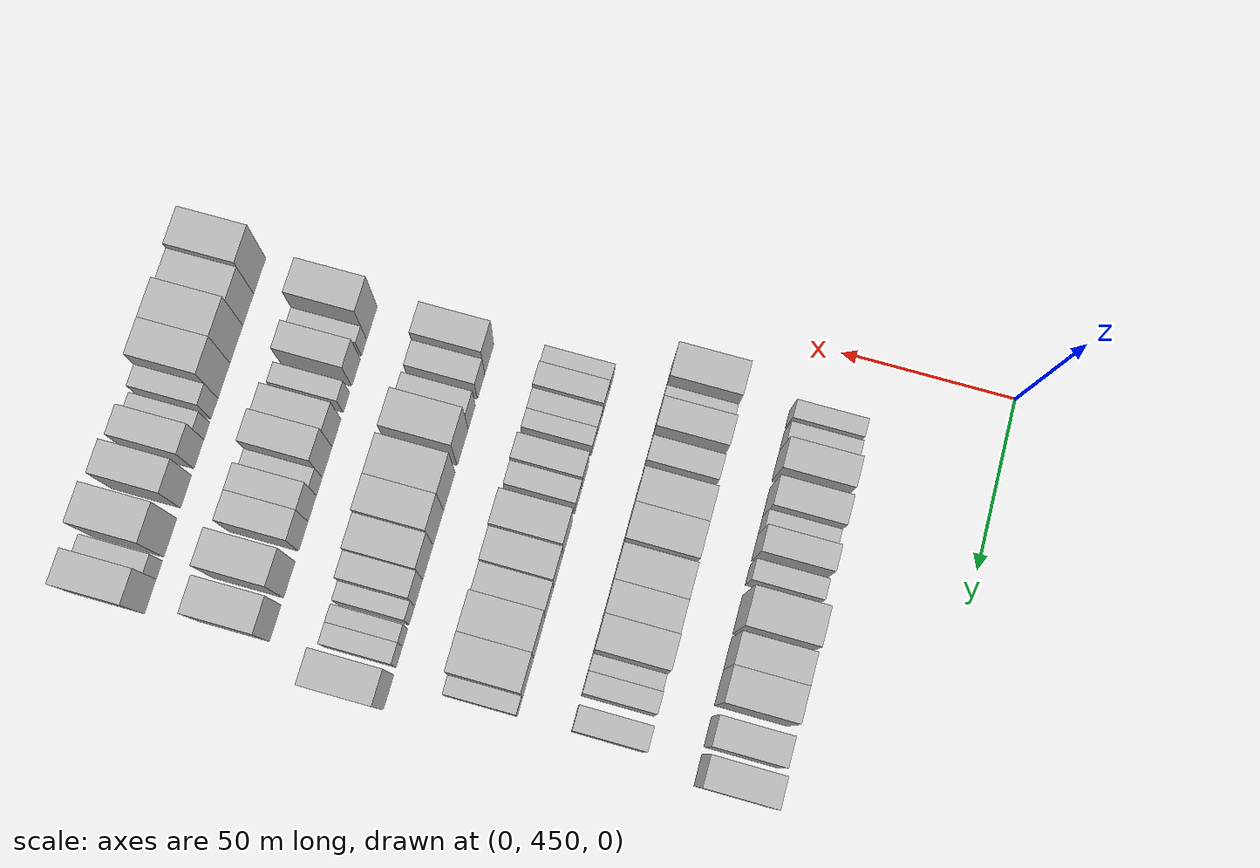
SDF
<sdf version="1.6">
 <world name="default">
  <model name="building_107">
   <static>1</static>
   <pose>50.0000 472.8811 0 0.000000 0.000000 0.000000</pose>
   <link name="link">
    <pose>0 0 6.00 0 0 0</pose>
    <collision name="collision"><geometry><box><size>20.0000 5.3072 12.0000</size></box></geometry></collision>
    <visual name="visual">
     <cast_shadows>0</cast_shadows>
     <geometry><box><size>20.0000 5.3072 12.0000</size></box></geometry>
     <material>
      <script>
       <uri>model://HANNAS_wall/materials/scripts</uri>
       <uri>model://HANNAS_wall/materials/textures</uri>
       <name>vrc/HANNAS_wall</name>
      </script>
     </material>
    </visual>
   </link>
  </model>
  <model name="building_108">
   <static>1</static>
   <pose>50.0000 479.5080 0 0.000000 0.000000 0.000000</pose>
   <link name="link">
    <pose>0 0 6.00 0 0 0</pose>
    <collision name="collision"><geometry><box><size>20.0000 5.9467 12.0000</size></box></geometry></collision>
    <visual name="visual">
     <cast_shadows>0</cast_shadows>
     <geometry><box><size>20.0000 5.9467 12.0000</size></box></geometry>
     <material>
      <script>
       <uri>model://HANNAS_wall/materials/scripts</uri>
       <uri>model://HANNAS_wall/materials/textures</uri>
       <name>vrc/HANNAS_wall</name>
      </script>
     </material>
    </visual>
   </link>
  </model>
  <model name="building_109">
   <static>1</static>
   <pose>50.0000 486.8493 0 0.000000 0.000000 0.000000</pose>
   <link name="link">
    <pose>0 0 9.00 0 0 0</pose>
    <collision name="collision"><geometry><box><size>20.0000 8.7358 18.0000</size></box></geometry></collision>
    <visual name="visual">
     <cast_shadows>0</cast_shadows>
     <geometry><box><size>20.0000 8.7358 18.0000</size></box></geometry>
     <material>
      <script>
       <uri>model://HANNAS_wall/materials/scripts</uri>
       <uri>model://HANNAS_wall/materials/textures</uri>
       <name>vrc/HANNAS_wall</name>
      </script>
     </material>
    </visual>
   </link>
  </model>
  <model name="building_110">
   <static>1</static>
   <pose>50.0000 497.4226 0 0.000000 0.000000 0.000000</pose>
   <link name="link">
    <pose>0 0 9.00 0 0 0</pose>
    <collision name="collision"><geometry><box><size>20.0000 8.4109 18.0000</size></box></geometry></collision>
    <visual name="visual">
     <cast_shadows>0</cast_shadows>
     <geometry><box><size>20.0000 8.4109 18.0000</size></box></geometry>
     <material>
      <script>
       <uri>model://HANNAS_wall/materials/scripts</uri>
       <uri>model://HANNAS_wall/materials/textures</uri>
       <name>vrc/HANNAS_wall</name>
      </script>
     </material>
    </visual>
   </link>
  </model>
  <model name="building_111">
   <static>1</static>
   <pose>50.0000 504.2874 0 0.000000 0.000000 0.000000</pose>
   <link name="link">
    <pose>0 0 6.00 0 0 0</pose>
    <collision name="collision"><geometry><box><size>20.0000 5.3186 12.0000</size></box></geometry></collision>
    <visual name="visual">
     <cast_shadows>0</cast_shadows>
     <geometry><box><size>20.0000 5.3186 12.0000</size></box></geometry>
     <material>
      <script>
       <uri>model://HANNAS_wall/materials/scripts</uri>
       <uri>model://HANNAS_wall/materials/textures</uri>
       <name>vrc/HANNAS_wall</name>
      </script>
     </material>
    </visual>
   </link>
  </model>
  <model name="building_112">
   <static>1</static>
   <pose>50.0000 510.6583 0 0.000000 0.000000 0.000000</pose>
   <link name="link">
    <pose>0 0 9.00 0 0 0</pose>
    <collision name="collision"><geometry><box><size>20.0000 7.4232 18.0000</size></box></geometry></collision>
    <visual name="visual">
     <cast_shadows>0</cast_shadows>
     <geometry><box><size>20.0000 7.4232 18.0000</size></box></geometry>
     <material>
      <script>
       <uri>model://HANNAS_wall/materials/scripts</uri>
       <uri>model://HANNAS_wall/materials/textures</uri>
       <name>vrc/HANNAS_wall</name>
      </script>
     </material>
    </visual>
   </link>
  </model>
  <model name="building_113">
   <static>1</static>
   <pose>50.0000 518.3257 0 0.000000 0.000000 0.000000</pose>
   <link name="link">
    <pose>0 0 6.00 0 0 0</pose>
    <collision name="collision"><geometry><box><size>20.0000 5.9116 12.0000</size></box></geometry></collision>
    <visual name="visual">
     <cast_shadows>0</cast_shadows>
     <geometry><box><size>20.0000 5.9116 12.0000</size></box></geometry>
     <material>
      <script>
       <uri>model://HANNAS_wall/materials/scripts</uri>
       <uri>model://HANNAS_wall/materials/textures</uri>
       <name>vrc/HANNAS_wall</name>
      </script>
     </material>
    </visual>
   </link>
  </model>
  <model name="building_114">
   <static>1</static>
   <pose>50.0000 529.6898 0 0.000000 0.000000 0.000000</pose>
   <link name="link">
    <pose>0 0 12.00 0 0 0</pose>
    <collision name="collision"><geometry><box><size>20.0000 10.8165 24.0000</size></box></geometry></collision>
    <visual name="visual">
     <cast_shadows>0</cast_shadows>
     <geometry><box><size>20.0000 10.8165 24.0000</size></box></geometry>
     <material>
      <script>
       <uri>model://HANNAS_wall/materials/scripts</uri>
       <uri>model://HANNAS_wall/materials/textures</uri>
       <name>vrc/HANNAS_wall</name>
      </script>
     </material>
    </visual>
   </link>
  </model>
  <model name="building_115">
   <static>1</static>
   <pose>50.0000 540.5441 0 0.000000 0.000000 0.000000</pose>
   <link name="link">
    <pose>0 0 10.50 0 0 0</pose>
    <collision name="collision"><geometry><box><size>20.0000 8.8921 21.0000</size></box></geometry></collision>
    <visual name="visual">
     <cast_shadows>0</cast_shadows>
     <geometry><box><size>20.0000 8.8921 21.0000</size></box></geometry>
     <material>
      <script>
       <uri>model://HANNAS_wall/materials/scripts</uri>
       <uri>model://HANNAS_wall/materials/textures</uri>
       <name>vrc/HANNAS_wall</name>
      </script>
     </material>
    </visual>
   </link>
  </model>
  <model name="building_116">
   <static>1</static>
   <pose>50.0000 549.9887 0 0.000000 0.000000 0.000000</pose>
   <link name="link">
    <pose>0 0 10.50 0 0 0</pose>
    <collision name="collision"><geometry><box><size>20.0000 9.9971 21.0000</size></box></geometry></collision>
    <visual name="visual">
     <cast_shadows>0</cast_shadows>
     <geometry><box><size>20.0000 9.9971 21.0000</size></box></geometry>
     <material>
      <script>
       <uri>model://HANNAS_wall/materials/scripts</uri>
       <uri>model://HANNAS_wall/materials/textures</uri>
       <name>vrc/HANNAS_wall</name>
      </script>
     </material>
    </visual>
   </link>
  </model>
  <model name="building_117">
   <static>1</static>
   <pose>50.0000 562.1342 0 0.000000 0.000000 0.000000</pose>
   <link name="link">
    <pose>0 0 9.00 0 0 0</pose>
    <collision name="collision"><geometry><box><size>20.0000 8.2938 18.0000</size></box></geometry></collision>
    <visual name="visual">
     <cast_shadows>0</cast_shadows>
     <geometry><box><size>20.0000 8.2938 18.0000</size></box></geometry>
     <material>
      <script>
       <uri>model://HANNAS_wall/materials/scripts</uri>
       <uri>model://HANNAS_wall/materials/textures</uri>
       <name>vrc/HANNAS_wall</name>
      </script>
     </material>
    </visual>
   </link>
  </model>
  <model name="building_118">
   <static>1</static>
   <pose>50.0000 572.5674 0 0.000000 0.000000 0.000000</pose>
   <link name="link">
    <pose>0 0 10.50 0 0 0</pose>
    <collision name="collision"><geometry><box><size>20.0000 8.5726 21.0000</size></box></geometry></collision>
    <visual name="visual">
     <cast_shadows>0</cast_shadows>
     <geometry><box><size>20.0000 8.5726 21.0000</size></box></geometry>
     <material>
      <script>
       <uri>model://HANNAS_wall/materials/scripts</uri>
       <uri>model://HANNAS_wall/materials/textures</uri>
       <name>vrc/HANNAS_wall</name>
      </script>
     </material>
    </visual>
   </link>
  </model>
  <model name="building_236">
   <static>1</static>
   <pose>85.0000 471.0602 0 0.000000 0.000000 0.000000</pose>
   <link name="link">
    <pose>0 0 10.50 0 0 0</pose>
    <collision name="collision"><geometry><box><size>20.0000 9.7270 21.0000</size></box></geometry></collision>
    <visual name="visual">
     <cast_shadows>0</cast_shadows>
     <geometry><box><size>20.0000 9.7270 21.0000</size></box></geometry>
     <material>
      <script>
       <uri>model://HANNAS_wall/materials/scripts</uri>
       <uri>model://HANNAS_wall/materials/textures</uri>
       <name>vrc/HANNAS_wall</name>
      </script>
     </material>
    </visual>
   </link>
  </model>
  <model name="building_237">
   <static>1</static>
   <pose>85.0000 478.7575 0 0.000000 0.000000 0.000000</pose>
   <link name="link">
    <pose>0 0 6.00 0 0 0</pose>
    <collision name="collision"><geometry><box><size>20.0000 5.6675 12.0000</size></box></geometry></collision>
    <visual name="visual">
     <cast_shadows>0</cast_shadows>
     <geometry><box><size>20.0000 5.6675 12.0000</size></box></geometry>
     <material>
      <script>
       <uri>model://HANNAS_wall/materials/scripts</uri>
       <uri>model://HANNAS_wall/materials/textures</uri>
       <name>vrc/HANNAS_wall</name>
      </script>
     </material>
    </visual>
   </link>
  </model>
  <model name="building_238">
   <static>1</static>
   <pose>85.0000 485.8335 0 0.000000 0.000000 0.000000</pose>
   <link name="link">
    <pose>0 0 10.50 0 0 0</pose>
    <collision name="collision"><geometry><box><size>20.0000 8.4846 21.0000</size></box></geometry></collision>
    <visual name="visual">
     <cast_shadows>0</cast_shadows>
     <geometry><box><size>20.0000 8.4846 21.0000</size></box></geometry>
     <material>
      <script>
       <uri>model://HANNAS_wall/materials/scripts</uri>
       <uri>model://HANNAS_wall/materials/textures</uri>
       <name>vrc/HANNAS_wall</name>
      </script>
     </material>
    </visual>
   </link>
  </model>
  <model name="building_239">
   <static>1</static>
   <pose>85.0000 494.6760 0 0.000000 0.000000 0.000000</pose>
   <link name="link">
    <pose>0 0 7.50 0 0 0</pose>
    <collision name="collision"><geometry><box><size>20.0000 7.2004 15.0000</size></box></geometry></collision>
    <visual name="visual">
     <cast_shadows>0</cast_shadows>
     <geometry><box><size>20.0000 7.2004 15.0000</size></box></geometry>
     <material>
      <script>
       <uri>model://HANNAS_wall/materials/scripts</uri>
       <uri>model://HANNAS_wall/materials/textures</uri>
       <name>vrc/HANNAS_wall</name>
      </script>
     </material>
    </visual>
   </link>
  </model>
  <model name="building_240">
   <static>1</static>
   <pose>85.0000 506.1284 0 0.000000 0.000000 0.000000</pose>
   <link name="link">
    <pose>0 0 10.50 0 0 0</pose>
    <collision name="collision"><geometry><box><size>20.0000 9.7045 21.0000</size></box></geometry></collision>
    <visual name="visual">
     <cast_shadows>0</cast_shadows>
     <geometry><box><size>20.0000 9.7045 21.0000</size></box></geometry>
     <material>
      <script>
       <uri>model://HANNAS_wall/materials/scripts</uri>
       <uri>model://HANNAS_wall/materials/textures</uri>
       <name>vrc/HANNAS_wall</name>
      </script>
     </material>
    </visual>
   </link>
  </model>
  <model name="building_241">
   <static>1</static>
   <pose>85.0000 516.0493 0 0.000000 0.000000 0.000000</pose>
   <link name="link">
    <pose>0 0 10.50 0 0 0</pose>
    <collision name="collision"><geometry><box><size>20.0000 10.1372 21.0000</size></box></geometry></collision>
    <visual name="visual">
     <cast_shadows>0</cast_shadows>
     <geometry><box><size>20.0000 10.1372 21.0000</size></box></geometry>
     <material>
      <script>
       <uri>model://HANNAS_wall/materials/scripts</uri>
       <uri>model://HANNAS_wall/materials/textures</uri>
       <name>vrc/HANNAS_wall</name>
      </script>
     </material>
    </visual>
   </link>
  </model>
  <model name="building_242">
   <static>1</static>
   <pose>85.0000 527.1131 0 0.000000 0.000000 0.000000</pose>
   <link name="link">
    <pose>0 0 10.50 0 0 0</pose>
    <collision name="collision"><geometry><box><size>20.0000 9.9904 21.0000</size></box></geometry></collision>
    <visual name="visual">
     <cast_shadows>0</cast_shadows>
     <geometry><box><size>20.0000 9.9904 21.0000</size></box></geometry>
     <material>
      <script>
       <uri>model://HANNAS_wall/materials/scripts</uri>
       <uri>model://HANNAS_wall/materials/textures</uri>
       <name>vrc/HANNAS_wall</name>
      </script>
     </material>
    </visual>
   </link>
  </model>
  <model name="building_243">
   <static>1</static>
   <pose>85.0000 536.8431 0 0.000000 0.000000 0.000000</pose>
   <link name="link">
    <pose>0 0 10.50 0 0 0</pose>
    <collision name="collision"><geometry><box><size>20.0000 9.4696 21.0000</size></box></geometry></collision>
    <visual name="visual">
     <cast_shadows>0</cast_shadows>
     <geometry><box><size>20.0000 9.4696 21.0000</size></box></geometry>
     <material>
      <script>
       <uri>model://HANNAS_wall/materials/scripts</uri>
       <uri>model://HANNAS_wall/materials/textures</uri>
       <name>vrc/HANNAS_wall</name>
      </script>
     </material>
    </visual>
   </link>
  </model>
  <model name="building_244">
   <static>1</static>
   <pose>85.0000 546.4128 0 0.000000 0.000000 0.000000</pose>
   <link name="link">
    <pose>0 0 12.00 0 0 0</pose>
    <collision name="collision"><geometry><box><size>20.0000 9.6696 24.0000</size></box></geometry></collision>
    <visual name="visual">
     <cast_shadows>0</cast_shadows>
     <geometry><box><size>20.0000 9.6696 24.0000</size></box></geometry>
     <material>
      <script>
       <uri>model://HANNAS_wall/materials/scripts</uri>
       <uri>model://HANNAS_wall/materials/textures</uri>
       <name>vrc/HANNAS_wall</name>
      </script>
     </material>
    </visual>
   </link>
  </model>
  <model name="building_245">
   <static>1</static>
   <pose>85.0000 553.6696 0 0.000000 0.000000 0.000000</pose>
   <link name="link">
    <pose>0 0 6.00 0 0 0</pose>
    <collision name="collision"><geometry><box><size>20.0000 4.8441 12.0000</size></box></geometry></collision>
    <visual name="visual">
     <cast_shadows>0</cast_shadows>
     <geometry><box><size>20.0000 4.8441 12.0000</size></box></geometry>
     <material>
      <script>
       <uri>model://HANNAS_wall/materials/scripts</uri>
       <uri>model://HANNAS_wall/materials/textures</uri>
       <name>vrc/HANNAS_wall</name>
      </script>
     </material>
    </visual>
   </link>
  </model>
  <model name="building_246">
   <static>1</static>
   <pose>85.0000 559.1233 0 0.000000 0.000000 0.000000</pose>
   <link name="link">
    <pose>0 0 7.50 0 0 0</pose>
    <collision name="collision"><geometry><box><size>20.0000 6.0632 15.0000</size></box></geometry></collision>
    <visual name="visual">
     <cast_shadows>0</cast_shadows>
     <geometry><box><size>20.0000 6.0632 15.0000</size></box></geometry>
     <material>
      <script>
       <uri>model://HANNAS_wall/materials/scripts</uri>
       <uri>model://HANNAS_wall/materials/textures</uri>
       <name>vrc/HANNAS_wall</name>
      </script>
     </material>
    </visual>
   </link>
  </model>
  <model name="building_247">
   <static>1</static>
   <pose>85.0000 568.5957 0 0.000000 0.000000 0.000000</pose>
   <link name="link">
    <pose>0 0 7.50 0 0 0</pose>
    <collision name="collision"><geometry><box><size>20.0000 6.8816 15.0000</size></box></geometry></collision>
    <visual name="visual">
     <cast_shadows>0</cast_shadows>
     <geometry><box><size>20.0000 6.8816 15.0000</size></box></geometry>
     <material>
      <script>
       <uri>model://HANNAS_wall/materials/scripts</uri>
       <uri>model://HANNAS_wall/materials/textures</uri>
       <name>vrc/HANNAS_wall</name>
      </script>
     </material>
    </visual>
   </link>
  </model>
  <model name="building_367">
   <static>1</static>
   <pose>120.0000 476.9288 0 0.000000 0.000000 0.000000</pose>
   <link name="link">
    <pose>0 0 6.00 0 0 0</pose>
    <collision name="collision"><geometry><box><size>20.0000 5.6209 12.0000</size></box></geometry></collision>
    <visual name="visual">
     <cast_shadows>0</cast_shadows>
     <geometry><box><size>20.0000 5.6209 12.0000</size></box></geometry>
     <material>
      <script>
       <uri>model://HANNAS_wall/materials/scripts</uri>
       <uri>model://HANNAS_wall/materials/textures</uri>
       <name>vrc/HANNAS_wall</name>
      </script>
     </material>
    </visual>
   </link>
  </model>
  <model name="building_368">
   <static>1</static>
   <pose>120.0000 483.1126 0 0.000000 0.000000 0.000000</pose>
   <link name="link">
    <pose>0 0 7.50 0 0 0</pose>
    <collision name="collision"><geometry><box><size>20.0000 6.7466 15.0000</size></box></geometry></collision>
    <visual name="visual">
     <cast_shadows>0</cast_shadows>
     <geometry><box><size>20.0000 6.7466 15.0000</size></box></geometry>
     <material>
      <script>
       <uri>model://HANNAS_wall/materials/scripts</uri>
       <uri>model://HANNAS_wall/materials/textures</uri>
       <name>vrc/HANNAS_wall</name>
      </script>
     </material>
    </visual>
   </link>
  </model>
  <model name="building_369">
   <static>1</static>
   <pose>120.0000 489.4857 0 0.000000 0.000000 0.000000</pose>
   <link name="link">
    <pose>0 0 6.00 0 0 0</pose>
    <collision name="collision"><geometry><box><size>20.0000 5.9996 12.0000</size></box></geometry></collision>
    <visual name="visual">
     <cast_shadows>0</cast_shadows>
     <geometry><box><size>20.0000 5.9996 12.0000</size></box></geometry>
     <material>
      <script>
       <uri>model://HANNAS_wall/materials/scripts</uri>
       <uri>model://HANNAS_wall/materials/textures</uri>
       <name>vrc/HANNAS_wall</name>
      </script>
     </material>
    </visual>
   </link>
  </model>
  <model name="building_370">
   <static>1</static>
   <pose>120.0000 495.2252 0 0.000000 0.000000 0.000000</pose>
   <link name="link">
    <pose>0 0 6.00 0 0 0</pose>
    <collision name="collision"><geometry><box><size>20.0000 5.4795 12.0000</size></box></geometry></collision>
    <visual name="visual">
     <cast_shadows>0</cast_shadows>
     <geometry><box><size>20.0000 5.4795 12.0000</size></box></geometry>
     <material>
      <script>
       <uri>model://HANNAS_wall/materials/scripts</uri>
       <uri>model://HANNAS_wall/materials/textures</uri>
       <name>vrc/HANNAS_wall</name>
      </script>
     </material>
    </visual>
   </link>
  </model>
  <model name="building_371">
   <static>1</static>
   <pose>120.0000 504.5869 0 0.000000 0.000000 0.000000</pose>
   <link name="link">
    <pose>0 0 9.00 0 0 0</pose>
    <collision name="collision"><geometry><box><size>20.0000 7.2438 18.0000</size></box></geometry></collision>
    <visual name="visual">
     <cast_shadows>0</cast_shadows>
     <geometry><box><size>20.0000 7.2438 18.0000</size></box></geometry>
     <material>
      <script>
       <uri>model://HANNAS_wall/materials/scripts</uri>
       <uri>model://HANNAS_wall/materials/textures</uri>
       <name>vrc/HANNAS_wall</name>
      </script>
     </material>
    </visual>
   </link>
  </model>
  <model name="building_372">
   <static>1</static>
   <pose>120.0000 511.5255 0 0.000000 0.000000 0.000000</pose>
   <link name="link">
    <pose>0 0 7.50 0 0 0</pose>
    <collision name="collision"><geometry><box><size>20.0000 6.6334 15.0000</size></box></geometry></collision>
    <visual name="visual">
     <cast_shadows>0</cast_shadows>
     <geometry><box><size>20.0000 6.6334 15.0000</size></box></geometry>
     <material>
      <script>
       <uri>model://HANNAS_wall/materials/scripts</uri>
       <uri>model://HANNAS_wall/materials/textures</uri>
       <name>vrc/HANNAS_wall</name>
      </script>
     </material>
    </visual>
   </link>
  </model>
  <model name="building_373">
   <static>1</static>
   <pose>120.0000 522.7236 0 0.000000 0.000000 0.000000</pose>
   <link name="link">
    <pose>0 0 12.00 0 0 0</pose>
    <collision name="collision"><geometry><box><size>20.0000 9.7628 24.0000</size></box></geometry></collision>
    <visual name="visual">
     <cast_shadows>0</cast_shadows>
     <geometry><box><size>20.0000 9.7628 24.0000</size></box></geometry>
     <material>
      <script>
       <uri>model://HANNAS_wall/materials/scripts</uri>
       <uri>model://HANNAS_wall/materials/textures</uri>
       <name>vrc/HANNAS_wall</name>
      </script>
     </material>
    </visual>
   </link>
  </model>
  <model name="building_374">
   <static>1</static>
   <pose>120.0000 532.1885 0 0.000000 0.000000 0.000000</pose>
   <link name="link">
    <pose>0 0 10.50 0 0 0</pose>
    <collision name="collision"><geometry><box><size>20.0000 9.1669 21.0000</size></box></geometry></collision>
    <visual name="visual">
     <cast_shadows>0</cast_shadows>
     <geometry><box><size>20.0000 9.1669 21.0000</size></box></geometry>
     <material>
      <script>
       <uri>model://HANNAS_wall/materials/scripts</uri>
       <uri>model://HANNAS_wall/materials/textures</uri>
       <name>vrc/HANNAS_wall</name>
      </script>
     </material>
    </visual>
   </link>
  </model>
  <model name="building_375">
   <static>1</static>
   <pose>120.0000 541.0107 0 0.000000 0.000000 0.000000</pose>
   <link name="link">
    <pose>0 0 9.00 0 0 0</pose>
    <collision name="collision"><geometry><box><size>20.0000 8.4774 18.0000</size></box></geometry></collision>
    <visual name="visual">
     <cast_shadows>0</cast_shadows>
     <geometry><box><size>20.0000 8.4774 18.0000</size></box></geometry>
     <material>
      <script>
       <uri>model://HANNAS_wall/materials/scripts</uri>
       <uri>model://HANNAS_wall/materials/textures</uri>
       <name>vrc/HANNAS_wall</name>
      </script>
     </material>
    </visual>
   </link>
  </model>
  <model name="building_376">
   <static>1</static>
   <pose>120.0000 550.7635 0 0.000000 0.000000 0.000000</pose>
   <link name="link">
    <pose>0 0 12.00 0 0 0</pose>
    <collision name="collision"><geometry><box><size>20.0000 11.0283 24.0000</size></box></geometry></collision>
    <visual name="visual">
     <cast_shadows>0</cast_shadows>
     <geometry><box><size>20.0000 11.0283 24.0000</size></box></geometry>
     <material>
      <script>
       <uri>model://HANNAS_wall/materials/scripts</uri>
       <uri>model://HANNAS_wall/materials/textures</uri>
       <name>vrc/HANNAS_wall</name>
      </script>
     </material>
    </visual>
   </link>
  </model>
  <model name="building_377">
   <static>1</static>
   <pose>120.0000 561.6013 0 0.000000 0.000000 0.000000</pose>
   <link name="link">
    <pose>0 0 12.00 0 0 0</pose>
    <collision name="collision"><geometry><box><size>20.0000 10.6472 24.0000</size></box></geometry></collision>
    <visual name="visual">
     <cast_shadows>0</cast_shadows>
     <geometry><box><size>20.0000 10.6472 24.0000</size></box></geometry>
     <material>
      <script>
       <uri>model://HANNAS_wall/materials/scripts</uri>
       <uri>model://HANNAS_wall/materials/textures</uri>
       <name>vrc/HANNAS_wall</name>
      </script>
     </material>
    </visual>
   </link>
  </model>
  <model name="building_378">
   <static>1</static>
   <pose>120.0000 569.5240 0 0.000000 0.000000 0.000000</pose>
   <link name="link">
    <pose>0 0 6.00 0 0 0</pose>
    <collision name="collision"><geometry><box><size>20.0000 5.1983 12.0000</size></box></geometry></collision>
    <visual name="visual">
     <cast_shadows>0</cast_shadows>
     <geometry><box><size>20.0000 5.1983 12.0000</size></box></geometry>
     <material>
      <script>
       <uri>model://HANNAS_wall/materials/scripts</uri>
       <uri>model://HANNAS_wall/materials/textures</uri>
       <name>vrc/HANNAS_wall</name>
      </script>
     </material>
    </visual>
   </link>
  </model>
  <model name="building_499">
   <static>1</static>
   <pose>155.0000 478.8940 0 0.000000 0.000000 0.000000</pose>
   <link name="link">
    <pose>0 0 10.50 0 0 0</pose>
    <collision name="collision"><geometry><box><size>20.0000 9.0175 21.0000</size></box></geometry></collision>
    <visual name="visual">
     <cast_shadows>0</cast_shadows>
     <geometry><box><size>20.0000 9.0175 21.0000</size></box></geometry>
     <material>
      <script>
       <uri>model://HANNAS_wall/materials/scripts</uri>
       <uri>model://HANNAS_wall/materials/textures</uri>
       <name>vrc/HANNAS_wall</name>
      </script>
     </material>
    </visual>
   </link>
  </model>
  <model name="building_500">
   <static>1</static>
   <pose>155.0000 487.0997 0 0.000000 0.000000 0.000000</pose>
   <link name="link">
    <pose>0 0 7.50 0 0 0</pose>
    <collision name="collision"><geometry><box><size>20.0000 7.3940 15.0000</size></box></geometry></collision>
    <visual name="visual">
     <cast_shadows>0</cast_shadows>
     <geometry><box><size>20.0000 7.3940 15.0000</size></box></geometry>
     <material>
      <script>
       <uri>model://HANNAS_wall/materials/scripts</uri>
       <uri>model://HANNAS_wall/materials/textures</uri>
       <name>vrc/HANNAS_wall</name>
      </script>
     </material>
    </visual>
   </link>
  </model>
  <model name="building_501">
   <static>1</static>
   <pose>155.0000 496.3541 0 0.000000 0.000000 0.000000</pose>
   <link name="link">
    <pose>0 0 7.50 0 0 0</pose>
    <collision name="collision"><geometry><box><size>20.0000 7.1147 15.0000</size></box></geometry></collision>
    <visual name="visual">
     <cast_shadows>0</cast_shadows>
     <geometry><box><size>20.0000 7.1147 15.0000</size></box></geometry>
     <material>
      <script>
       <uri>model://HANNAS_wall/materials/scripts</uri>
       <uri>model://HANNAS_wall/materials/textures</uri>
       <name>vrc/HANNAS_wall</name>
      </script>
     </material>
    </visual>
   </link>
  </model>
  <model name="building_502">
   <static>1</static>
   <pose>155.0000 505.2437 0 0.000000 0.000000 0.000000</pose>
   <link name="link">
    <pose>0 0 12.00 0 0 0</pose>
    <collision name="collision"><geometry><box><size>20.0000 10.6647 24.0000</size></box></geometry></collision>
    <visual name="visual">
     <cast_shadows>0</cast_shadows>
     <geometry><box><size>20.0000 10.6647 24.0000</size></box></geometry>
     <material>
      <script>
       <uri>model://HANNAS_wall/materials/scripts</uri>
       <uri>model://HANNAS_wall/materials/textures</uri>
       <name>vrc/HANNAS_wall</name>
      </script>
     </material>
    </visual>
   </link>
  </model>
  <model name="building_503">
   <static>1</static>
   <pose>155.0000 518.1891 0 0.000000 0.000000 0.000000</pose>
   <link name="link">
    <pose>0 0 12.00 0 0 0</pose>
    <collision name="collision"><geometry><box><size>20.0000 11.2261 24.0000</size></box></geometry></collision>
    <visual name="visual">
     <cast_shadows>0</cast_shadows>
     <geometry><box><size>20.0000 11.2261 24.0000</size></box></geometry>
     <material>
      <script>
       <uri>model://HANNAS_wall/materials/scripts</uri>
       <uri>model://HANNAS_wall/materials/textures</uri>
       <name>vrc/HANNAS_wall</name>
      </script>
     </material>
    </visual>
   </link>
  </model>
  <model name="building_504">
   <static>1</static>
   <pose>155.0000 528.8161 0 0.000000 0.000000 0.000000</pose>
   <link name="link">
    <pose>0 0 12.00 0 0 0</pose>
    <collision name="collision"><geometry><box><size>20.0000 10.0279 24.0000</size></box></geometry></collision>
    <visual name="visual">
     <cast_shadows>0</cast_shadows>
     <geometry><box><size>20.0000 10.0279 24.0000</size></box></geometry>
     <material>
      <script>
       <uri>model://HANNAS_wall/materials/scripts</uri>
       <uri>model://HANNAS_wall/materials/textures</uri>
       <name>vrc/HANNAS_wall</name>
      </script>
     </material>
    </visual>
   </link>
  </model>
  <model name="building_505">
   <static>1</static>
   <pose>155.0000 538.7595 0 0.000000 0.000000 0.000000</pose>
   <link name="link">
    <pose>0 0 10.50 0 0 0</pose>
    <collision name="collision"><geometry><box><size>20.0000 9.8588 21.0000</size></box></geometry></collision>
    <visual name="visual">
     <cast_shadows>0</cast_shadows>
     <geometry><box><size>20.0000 9.8588 21.0000</size></box></geometry>
     <material>
      <script>
       <uri>model://HANNAS_wall/materials/scripts</uri>
       <uri>model://HANNAS_wall/materials/textures</uri>
       <name>vrc/HANNAS_wall</name>
      </script>
     </material>
    </visual>
   </link>
  </model>
  <model name="building_506">
   <static>1</static>
   <pose>155.0000 547.4417 0 0.000000 0.000000 0.000000</pose>
   <link name="link">
    <pose>0 0 9.00 0 0 0</pose>
    <collision name="collision"><geometry><box><size>20.0000 7.5056 18.0000</size></box></geometry></collision>
    <visual name="visual">
     <cast_shadows>0</cast_shadows>
     <geometry><box><size>20.0000 7.5056 18.0000</size></box></geometry>
     <material>
      <script>
       <uri>model://HANNAS_wall/materials/scripts</uri>
       <uri>model://HANNAS_wall/materials/textures</uri>
       <name>vrc/HANNAS_wall</name>
      </script>
     </material>
    </visual>
   </link>
  </model>
  <model name="building_507">
   <static>1</static>
   <pose>155.0000 553.8729 0 0.000000 0.000000 0.000000</pose>
   <link name="link">
    <pose>0 0 6.00 0 0 0</pose>
    <collision name="collision"><geometry><box><size>20.0000 5.3569 12.0000</size></box></geometry></collision>
    <visual name="visual">
     <cast_shadows>0</cast_shadows>
     <geometry><box><size>20.0000 5.3569 12.0000</size></box></geometry>
     <material>
      <script>
       <uri>model://HANNAS_wall/materials/scripts</uri>
       <uri>model://HANNAS_wall/materials/textures</uri>
       <name>vrc/HANNAS_wall</name>
      </script>
     </material>
    </visual>
   </link>
  </model>
  <model name="building_508">
   <static>1</static>
   <pose>155.0000 560.0334 0 0.000000 0.000000 0.000000</pose>
   <link name="link">
    <pose>0 0 6.00 0 0 0</pose>
    <collision name="collision"><geometry><box><size>20.0000 4.9640 12.0000</size></box></geometry></collision>
    <visual name="visual">
     <cast_shadows>0</cast_shadows>
     <geometry><box><size>20.0000 4.9640 12.0000</size></box></geometry>
     <material>
      <script>
       <uri>model://HANNAS_wall/materials/scripts</uri>
       <uri>model://HANNAS_wall/materials/textures</uri>
       <name>vrc/HANNAS_wall</name>
      </script>
     </material>
    </visual>
   </link>
  </model>
  <model name="building_509">
   <static>1</static>
   <pose>155.0000 565.4742 0 0.000000 0.000000 0.000000</pose>
   <link name="link">
    <pose>0 0 6.00 0 0 0</pose>
    <collision name="collision"><geometry><box><size>20.0000 5.9176 12.0000</size></box></geometry></collision>
    <visual name="visual">
     <cast_shadows>0</cast_shadows>
     <geometry><box><size>20.0000 5.9176 12.0000</size></box></geometry>
     <material>
      <script>
       <uri>model://HANNAS_wall/materials/scripts</uri>
       <uri>model://HANNAS_wall/materials/textures</uri>
       <name>vrc/HANNAS_wall</name>
      </script>
     </material>
    </visual>
   </link>
  </model>
  <model name="building_510">
   <static>1</static>
   <pose>155.0000 575.2969 0 0.000000 0.000000 0.000000</pose>
   <link name="link">
    <pose>0 0 12.00 0 0 0</pose>
    <collision name="collision"><geometry><box><size>20.0000 9.7279 24.0000</size></box></geometry></collision>
    <visual name="visual">
     <cast_shadows>0</cast_shadows>
     <geometry><box><size>20.0000 9.7279 24.0000</size></box></geometry>
     <material>
      <script>
       <uri>model://HANNAS_wall/materials/scripts</uri>
       <uri>model://HANNAS_wall/materials/textures</uri>
       <name>vrc/HANNAS_wall</name>
      </script>
     </material>
    </visual>
   </link>
  </model>
  <model name="building_630">
   <static>1</static>
   <pose>190.0000 477.5947 0 0.000000 0.000000 0.000000</pose>
   <link name="link">
    <pose>0 0 12.00 0 0 0</pose>
    <collision name="collision"><geometry><box><size>20.0000 10.1264 24.0000</size></box></geometry></collision>
    <visual name="visual">
     <cast_shadows>0</cast_shadows>
     <geometry><box><size>20.0000 10.1264 24.0000</size></box></geometry>
     <material>
      <script>
       <uri>model://HANNAS_wall/materials/scripts</uri>
       <uri>model://HANNAS_wall/materials/textures</uri>
       <name>vrc/HANNAS_wall</name>
      </script>
     </material>
    </visual>
   </link>
  </model>
  <model name="building_631">
   <static>1</static>
   <pose>190.0000 485.1185 0 0.000000 0.000000 0.000000</pose>
   <link name="link">
    <pose>0 0 6.00 0 0 0</pose>
    <collision name="collision"><geometry><box><size>20.0000 4.9213 12.0000</size></box></geometry></collision>
    <visual name="visual">
     <cast_shadows>0</cast_shadows>
     <geometry><box><size>20.0000 4.9213 12.0000</size></box></geometry>
     <material>
      <script>
       <uri>model://HANNAS_wall/materials/scripts</uri>
       <uri>model://HANNAS_wall/materials/textures</uri>
       <name>vrc/HANNAS_wall</name>
      </script>
     </material>
    </visual>
   </link>
  </model>
  <model name="building_632">
   <static>1</static>
   <pose>190.0000 492.6826 0 0.000000 0.000000 0.000000</pose>
   <link name="link">
    <pose>0 0 9.00 0 0 0</pose>
    <collision name="collision"><geometry><box><size>20.0000 8.2068 18.0000</size></box></geometry></collision>
    <visual name="visual">
     <cast_shadows>0</cast_shadows>
     <geometry><box><size>20.0000 8.2068 18.0000</size></box></geometry>
     <material>
      <script>
       <uri>model://HANNAS_wall/materials/scripts</uri>
       <uri>model://HANNAS_wall/materials/textures</uri>
       <name>vrc/HANNAS_wall</name>
      </script>
     </material>
    </visual>
   </link>
  </model>
  <model name="building_633">
   <static>1</static>
   <pose>190.0000 501.7288 0 0.000000 0.000000 0.000000</pose>
   <link name="link">
    <pose>0 0 6.00 0 0 0</pose>
    <collision name="collision"><geometry><box><size>20.0000 5.8858 12.0000</size></box></geometry></collision>
    <visual name="visual">
     <cast_shadows>0</cast_shadows>
     <geometry><box><size>20.0000 5.8858 12.0000</size></box></geometry>
     <material>
      <script>
       <uri>model://HANNAS_wall/materials/scripts</uri>
       <uri>model://HANNAS_wall/materials/textures</uri>
       <name>vrc/HANNAS_wall</name>
      </script>
     </material>
    </visual>
   </link>
  </model>
  <model name="building_634">
   <static>1</static>
   <pose>190.0000 510.7938 0 0.000000 0.000000 0.000000</pose>
   <link name="link">
    <pose>0 0 9.00 0 0 0</pose>
    <collision name="collision"><geometry><box><size>20.0000 8.2441 18.0000</size></box></geometry></collision>
    <visual name="visual">
     <cast_shadows>0</cast_shadows>
     <geometry><box><size>20.0000 8.2441 18.0000</size></box></geometry>
     <material>
      <script>
       <uri>model://HANNAS_wall/materials/scripts</uri>
       <uri>model://HANNAS_wall/materials/textures</uri>
       <name>vrc/HANNAS_wall</name>
      </script>
     </material>
    </visual>
   </link>
  </model>
  <model name="building_635">
   <static>1</static>
   <pose>190.0000 519.4456 0 0.000000 0.000000 0.000000</pose>
   <link name="link">
    <pose>0 0 10.50 0 0 0</pose>
    <collision name="collision"><geometry><box><size>20.0000 9.0596 21.0000</size></box></geometry></collision>
    <visual name="visual">
     <cast_shadows>0</cast_shadows>
     <geometry><box><size>20.0000 9.0596 21.0000</size></box></geometry>
     <material>
      <script>
       <uri>model://HANNAS_wall/materials/scripts</uri>
       <uri>model://HANNAS_wall/materials/textures</uri>
       <name>vrc/HANNAS_wall</name>
      </script>
     </material>
    </visual>
   </link>
  </model>
  <model name="building_636">
   <static>1</static>
   <pose>190.0000 526.6384 0 0.000000 0.000000 0.000000</pose>
   <link name="link">
    <pose>0 0 6.00 0 0 0</pose>
    <collision name="collision"><geometry><box><size>20.0000 5.3260 12.0000</size></box></geometry></collision>
    <visual name="visual">
     <cast_shadows>0</cast_shadows>
     <geometry><box><size>20.0000 5.3260 12.0000</size></box></geometry>
     <material>
      <script>
       <uri>model://HANNAS_wall/materials/scripts</uri>
       <uri>model://HANNAS_wall/materials/textures</uri>
       <name>vrc/HANNAS_wall</name>
      </script>
     </material>
    </visual>
   </link>
  </model>
  <model name="building_637">
   <static>1</static>
   <pose>190.0000 533.0915 0 0.000000 0.000000 0.000000</pose>
   <link name="link">
    <pose>0 0 9.00 0 0 0</pose>
    <collision name="collision"><geometry><box><size>20.0000 7.5803 18.0000</size></box></geometry></collision>
    <visual name="visual">
     <cast_shadows>0</cast_shadows>
     <geometry><box><size>20.0000 7.5803 18.0000</size></box></geometry>
     <material>
      <script>
       <uri>model://HANNAS_wall/materials/scripts</uri>
       <uri>model://HANNAS_wall/materials/textures</uri>
       <name>vrc/HANNAS_wall</name>
      </script>
     </material>
    </visual>
   </link>
  </model>
  <model name="building_638">
   <static>1</static>
   <pose>190.0000 541.1392 0 0.000000 0.000000 0.000000</pose>
   <link name="link">
    <pose>0 0 9.00 0 0 0</pose>
    <collision name="collision"><geometry><box><size>20.0000 8.5150 18.0000</size></box></geometry></collision>
    <visual name="visual">
     <cast_shadows>0</cast_shadows>
     <geometry><box><size>20.0000 8.5150 18.0000</size></box></geometry>
     <material>
      <script>
       <uri>model://HANNAS_wall/materials/scripts</uri>
       <uri>model://HANNAS_wall/materials/textures</uri>
       <name>vrc/HANNAS_wall</name>
      </script>
     </material>
    </visual>
   </link>
  </model>
  <model name="building_639">
   <static>1</static>
   <pose>190.0000 553.5711 0 0.000000 0.000000 0.000000</pose>
   <link name="link">
    <pose>0 0 12.00 0 0 0</pose>
    <collision name="collision"><geometry><box><size>20.0000 10.3489 24.0000</size></box></geometry></collision>
    <visual name="visual">
     <cast_shadows>0</cast_shadows>
     <geometry><box><size>20.0000 10.3489 24.0000</size></box></geometry>
     <material>
      <script>
       <uri>model://HANNAS_wall/materials/scripts</uri>
       <uri>model://HANNAS_wall/materials/textures</uri>
       <name>vrc/HANNAS_wall</name>
      </script>
     </material>
    </visual>
   </link>
  </model>
  <model name="building_640">
   <static>1</static>
   <pose>190.0000 565.9105 0 0.000000 0.000000 0.000000</pose>
   <link name="link">
    <pose>0 0 10.50 0 0 0</pose>
    <collision name="collision"><geometry><box><size>20.0000 10.3299 21.0000</size></box></geometry></collision>
    <visual name="visual">
     <cast_shadows>0</cast_shadows>
     <geometry><box><size>20.0000 10.3299 21.0000</size></box></geometry>
     <material>
      <script>
       <uri>model://HANNAS_wall/materials/scripts</uri>
       <uri>model://HANNAS_wall/materials/textures</uri>
       <name>vrc/HANNAS_wall</name>
      </script>
     </material>
    </visual>
   </link>
  </model>
  <model name="building_759">
   <static>1</static>
   <pose>225.0000 472.7998 0 0.000000 0.000000 0.000000</pose>
   <link name="link">
    <pose>0 0 12.00 0 0 0</pose>
    <collision name="collision"><geometry><box><size>20.0000 11.1308 24.0000</size></box></geometry></collision>
    <visual name="visual">
     <cast_shadows>0</cast_shadows>
     <geometry><box><size>20.0000 11.1308 24.0000</size></box></geometry>
     <material>
      <script>
       <uri>model://HANNAS_wall/materials/scripts</uri>
       <uri>model://HANNAS_wall/materials/textures</uri>
       <name>vrc/HANNAS_wall</name>
      </script>
     </material>
    </visual>
   </link>
  </model>
  <model name="building_760">
   <static>1</static>
   <pose>225.0000 483.2726 0 0.000000 0.000000 0.000000</pose>
   <link name="link">
    <pose>0 0 10.50 0 0 0</pose>
    <collision name="collision"><geometry><box><size>20.0000 9.8147 21.0000</size></box></geometry></collision>
    <visual name="visual">
     <cast_shadows>0</cast_shadows>
     <geometry><box><size>20.0000 9.8147 21.0000</size></box></geometry>
     <material>
      <script>
       <uri>model://HANNAS_wall/materials/scripts</uri>
       <uri>model://HANNAS_wall/materials/textures</uri>
       <name>vrc/HANNAS_wall</name>
      </script>
     </material>
    </visual>
   </link>
  </model>
  <model name="building_761">
   <static>1</static>
   <pose>225.0000 493.9125 0 0.000000 0.000000 0.000000</pose>
   <link name="link">
    <pose>0 0 12.00 0 0 0</pose>
    <collision name="collision"><geometry><box><size>20.0000 11.4652 24.0000</size></box></geometry></collision>
    <visual name="visual">
     <cast_shadows>0</cast_shadows>
     <geometry><box><size>20.0000 11.4652 24.0000</size></box></geometry>
     <material>
      <script>
       <uri>model://HANNAS_wall/materials/scripts</uri>
       <uri>model://HANNAS_wall/materials/textures</uri>
       <name>vrc/HANNAS_wall</name>
      </script>
     </material>
    </visual>
   </link>
  </model>
  <model name="building_762">
   <static>1</static>
   <pose>225.0000 504.9849 0 0.000000 0.000000 0.000000</pose>
   <link name="link">
    <pose>0 0 12.00 0 0 0</pose>
    <collision name="collision"><geometry><box><size>20.0000 10.6797 24.0000</size></box></geometry></collision>
    <visual name="visual">
     <cast_shadows>0</cast_shadows>
     <geometry><box><size>20.0000 10.6797 24.0000</size></box></geometry>
     <material>
      <script>
       <uri>model://HANNAS_wall/materials/scripts</uri>
       <uri>model://HANNAS_wall/materials/textures</uri>
       <name>vrc/HANNAS_wall</name>
      </script>
     </material>
    </visual>
   </link>
  </model>
  <model name="building_763">
   <static>1</static>
   <pose>225.0000 513.4391 0 0.000000 0.000000 0.000000</pose>
   <link name="link">
    <pose>0 0 7.50 0 0 0</pose>
    <collision name="collision"><geometry><box><size>20.0000 6.2286 15.0000</size></box></geometry></collision>
    <visual name="visual">
     <cast_shadows>0</cast_shadows>
     <geometry><box><size>20.0000 6.2286 15.0000</size></box></geometry>
     <material>
      <script>
       <uri>model://HANNAS_wall/materials/scripts</uri>
       <uri>model://HANNAS_wall/materials/textures</uri>
       <name>vrc/HANNAS_wall</name>
      </script>
     </material>
    </visual>
   </link>
  </model>
  <model name="building_764">
   <static>1</static>
   <pose>225.0000 520.1010 0 0.000000 0.000000 0.000000</pose>
   <link name="link">
    <pose>0 0 6.00 0 0 0</pose>
    <collision name="collision"><geometry><box><size>20.0000 5.0954 12.0000</size></box></geometry></collision>
    <visual name="visual">
     <cast_shadows>0</cast_shadows>
     <geometry><box><size>20.0000 5.0954 12.0000</size></box></geometry>
     <material>
      <script>
       <uri>model://HANNAS_wall/materials/scripts</uri>
       <uri>model://HANNAS_wall/materials/textures</uri>
       <name>vrc/HANNAS_wall</name>
      </script>
     </material>
    </visual>
   </link>
  </model>
  <model name="building_765">
   <static>1</static>
   <pose>225.0000 526.9584 0 0.000000 0.000000 0.000000</pose>
   <link name="link">
    <pose>0 0 9.00 0 0 0</pose>
    <collision name="collision"><geometry><box><size>20.0000 8.6194 18.0000</size></box></geometry></collision>
    <visual name="visual">
     <cast_shadows>0</cast_shadows>
     <geometry><box><size>20.0000 8.6194 18.0000</size></box></geometry>
     <material>
      <script>
       <uri>model://HANNAS_wall/materials/scripts</uri>
       <uri>model://HANNAS_wall/materials/textures</uri>
       <name>vrc/HANNAS_wall</name>
      </script>
     </material>
    </visual>
   </link>
  </model>
  <model name="building_766">
   <static>1</static>
   <pose>225.0000 538.0243 0 0.000000 0.000000 0.000000</pose>
   <link name="link">
    <pose>0 0 10.50 0 0 0</pose>
    <collision name="collision"><geometry><box><size>20.0000 9.5125 21.0000</size></box></geometry></collision>
    <visual name="visual">
     <cast_shadows>0</cast_shadows>
     <geometry><box><size>20.0000 9.5125 21.0000</size></box></geometry>
     <material>
      <script>
       <uri>model://HANNAS_wall/materials/scripts</uri>
       <uri>model://HANNAS_wall/materials/textures</uri>
       <name>vrc/HANNAS_wall</name>
      </script>
     </material>
    </visual>
   </link>
  </model>
  <model name="building_767">
   <static>1</static>
   <pose>225.0000 551.3782 0 0.000000 0.000000 0.000000</pose>
   <link name="link">
    <pose>0 0 12.00 0 0 0</pose>
    <collision name="collision"><geometry><box><size>20.0000 11.1953 24.0000</size></box></geometry></collision>
    <visual name="visual">
     <cast_shadows>0</cast_shadows>
     <geometry><box><size>20.0000 11.1953 24.0000</size></box></geometry>
     <material>
      <script>
       <uri>model://HANNAS_wall/materials/scripts</uri>
       <uri>model://HANNAS_wall/materials/textures</uri>
       <name>vrc/HANNAS_wall</name>
      </script>
     </material>
    </visual>
   </link>
  </model>
  <model name="building_768">
   <static>1</static>
   <pose>225.0000 560.6285 0 0.000000 0.000000 0.000000</pose>
   <link name="link">
    <pose>0 0 6.00 0 0 0</pose>
    <collision name="collision"><geometry><box><size>20.0000 5.3053 12.0000</size></box></geometry></collision>
    <visual name="visual">
     <cast_shadows>0</cast_shadows>
     <geometry><box><size>20.0000 5.3053 12.0000</size></box></geometry>
     <material>
      <script>
       <uri>model://HANNAS_wall/materials/scripts</uri>
       <uri>model://HANNAS_wall/materials/textures</uri>
       <name>vrc/HANNAS_wall</name>
      </script>
     </material>
    </visual>
   </link>
  </model>
  <model name="building_769">
   <static>1</static>
   <pose>225.0000 568.2088 0 0.000000 0.000000 0.000000</pose>
   <link name="link">
    <pose>0 0 10.50 0 0 0</pose>
    <collision name="collision"><geometry><box><size>20.0000 9.8552 21.0000</size></box></geometry></collision>
    <visual name="visual">
     <cast_shadows>0</cast_shadows>
     <geometry><box><size>20.0000 9.8552 21.0000</size></box></geometry>
     <material>
      <script>
       <uri>model://HANNAS_wall/materials/scripts</uri>
       <uri>model://HANNAS_wall/materials/textures</uri>
       <name>vrc/HANNAS_wall</name>
      </script>
     </material>
    </visual>
   </link>
  </model>
 </world>
</sdf>
